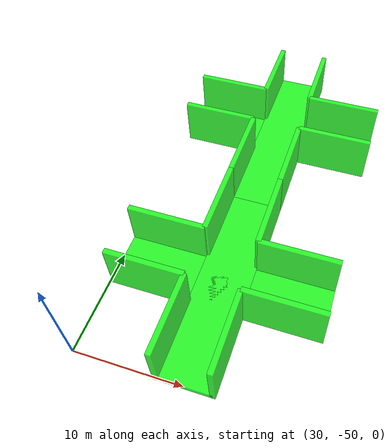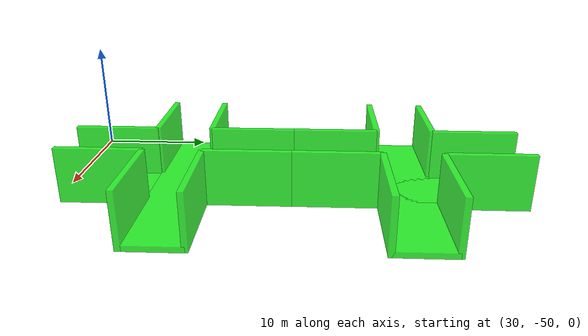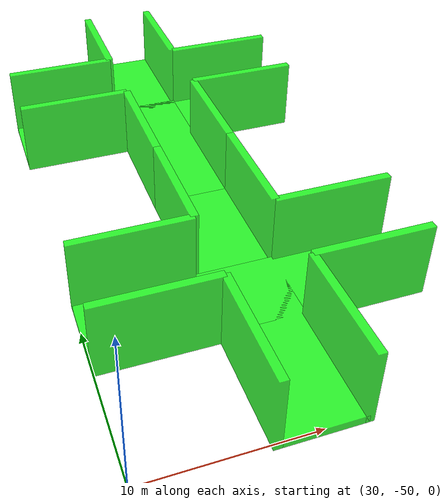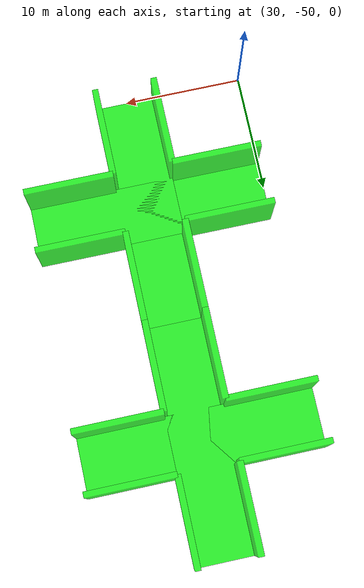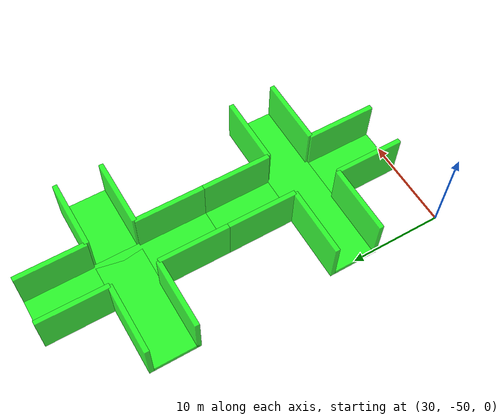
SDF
<sdf version="1.6">
 <world name="default">
  <model name="tile_6">
   <pose>40 -40 0 0 0 -1.5707963267948966</pose>
   <static>true</static>
   <link name="link">
    <collision name="collision_0">
     <pose>0 0 -0.25 0 0 0</pose>
     <geometry><box><size>5 20 0.5</size></box></geometry>
    </collision>
    <visual name="visual_0">
     <pose>0 0 -0.25 0 0 0</pose>
     <geometry><box><size>5 20 0.5</size></box></geometry>
     <material><ambient>0 1 0 0.8</ambient><diffuse>0 1 0 0.8</diffuse><specular>1 1 1 0.8</specular></material>
    </visual>
    <collision name="collision_1">
     <pose>0 0 -0.25 0 0 1.57</pose>
     <geometry><box><size>5 20 0.5</size></box></geometry>
    </collision>
    <visual name="visual_1">
     <pose>0 0 -0.25 0 0 1.57</pose>
     <geometry><box><size>5 20 0.5</size></box></geometry>
     <material><ambient>0 1 0 0.8</ambient><diffuse>0 1 0 0.8</diffuse><specular>1 1 1 0.8</specular></material>
    </visual>
    <collision name="collision_2">
     <pose>-2.5 6.25 2 3.14 -1.57 0</pose>
     <geometry><box><size>5 7.5 0.5</size></box></geometry>
    </collision>
    <visual name="visual_2">
     <pose>-2.5 6.25 2 3.14 -1.57 0</pose>
     <geometry><box><size>5 7.5 0.5</size></box></geometry>
     <material><ambient>0 1 0 0.8</ambient><diffuse>0 1 0 0.8</diffuse><specular>1 1 1 0.8</specular></material>
    </visual>
    <collision name="collision_3">
     <pose>2.5 6.25 2 3.14 -1.57 0</pose>
     <geometry><box><size>5 7.5 0.5</size></box></geometry>
    </collision>
    <visual name="visual_3">
     <pose>2.5 6.25 2 3.14 -1.57 0</pose>
     <geometry><box><size>5 7.5 0.5</size></box></geometry>
     <material><ambient>0 1 0 0.8</ambient><diffuse>0 1 0 0.8</diffuse><specular>1 1 1 0.8</specular></material>
    </visual>
    <collision name="collision_4">
     <pose>-2.5 -6.25 2 3.14 -1.57 0</pose>
     <geometry><box><size>5 7.5 0.5</size></box></geometry>
    </collision>
    <visual name="visual_4">
     <pose>-2.5 -6.25 2 3.14 -1.57 0</pose>
     <geometry><box><size>5 7.5 0.5</size></box></geometry>
     <material><ambient>0 1 0 0.8</ambient><diffuse>0 1 0 0.8</diffuse><specular>1 1 1 0.8</specular></material>
    </visual>
    <collision name="collision_5">
     <pose>2.5 -6.25 2 3.14 -1.57 0</pose>
     <geometry><box><size>5 7.5 0.5</size></box></geometry>
    </collision>
    <visual name="visual_5">
     <pose>2.5 -6.25 2 3.14 -1.57 0</pose>
     <geometry><box><size>5 7.5 0.5</size></box></geometry>
     <material><ambient>0 1 0 0.8</ambient><diffuse>0 1 0 0.8</diffuse><specular>1 1 1 0.8</specular></material>
    </visual>
    <collision name="collision_6">
     <pose>6.25 2.5 2 1.57 1.57 0</pose>
     <geometry><box><size>5 7.5 0.5</size></box></geometry>
    </collision>
    <visual name="visual_6">
     <pose>6.25 2.5 2 1.57 1.57 0</pose>
     <geometry><box><size>5 7.5 0.5</size></box></geometry>
     <material><ambient>0 1 0 0.8</ambient><diffuse>0 1 0 0.8</diffuse><specular>1 1 1 0.8</specular></material>
    </visual>
    <collision name="collision_7">
     <pose>-6.25 2.5 2 1.57 1.57 0</pose>
     <geometry><box><size>5 7.5 0.5</size></box></geometry>
    </collision>
    <visual name="visual_7">
     <pose>-6.25 2.5 2 1.57 1.57 0</pose>
     <geometry><box><size>5 7.5 0.5</size></box></geometry>
     <material><ambient>0 1 0 0.8</ambient><diffuse>0 1 0 0.8</diffuse><specular>1 1 1 0.8</specular></material>
    </visual>
    <collision name="collision_8">
     <pose>6.25 -2.5 2 1.57 1.57 0</pose>
     <geometry><box><size>5 7.5 0.5</size></box></geometry>
    </collision>
    <visual name="visual_8">
     <pose>6.25 -2.5 2 1.57 1.57 0</pose>
     <geometry><box><size>5 7.5 0.5</size></box></geometry>
     <material><ambient>0 1 0 0.8</ambient><diffuse>0 1 0 0.8</diffuse><specular>1 1 1 0.8</specular></material>
    </visual>
    <collision name="collision_9">
     <pose>-6.25 -2.5 2 1.57 1.57 0</pose>
     <geometry><box><size>5 7.5 0.5</size></box></geometry>
    </collision>
    <visual name="visual_9">
     <pose>-6.25 -2.5 2 1.57 1.57 0</pose>
     <geometry><box><size>5 7.5 0.5</size></box></geometry>
     <material><ambient>0 1 0 0.8</ambient><diffuse>0 1 0 0.8</diffuse><specular>1 1 1 0.8</specular></material>
    </visual>
   </link>
  </model>
  <model name="tile_7">
   <pose>40 -20 0 0 0 3.141592653589793</pose>
   <static>true</static>
   <link name="link">
    <collision name="collision_0">
     <pose>0 0 -0.25 0 0 0</pose>
     <geometry><box><size>5 20 0.5</size></box></geometry>
    </collision>
    <visual name="visual_0">
     <pose>0 0 -0.25 0 0 0</pose>
     <geometry><box><size>5 20 0.5</size></box></geometry>
     <material><ambient>0 1 0 0.8</ambient><diffuse>0 1 0 0.8</diffuse><specular>1 1 1 0.8</specular></material>
    </visual>
    <collision name="collision_1">
     <pose>0 0 -0.25 0 0 1.57</pose>
     <geometry><box><size>5 20 0.5</size></box></geometry>
    </collision>
    <visual name="visual_1">
     <pose>0 0 -0.25 0 0 1.57</pose>
     <geometry><box><size>5 20 0.5</size></box></geometry>
     <material><ambient>0 1 0 0.8</ambient><diffuse>0 1 0 0.8</diffuse><specular>1 1 1 0.8</specular></material>
    </visual>
    <collision name="collision_2">
     <pose>-2.5 6.25 2 3.14 -1.57 0</pose>
     <geometry><box><size>5 7.5 0.5</size></box></geometry>
    </collision>
    <visual name="visual_2">
     <pose>-2.5 6.25 2 3.14 -1.57 0</pose>
     <geometry><box><size>5 7.5 0.5</size></box></geometry>
     <material><ambient>0 1 0 0.8</ambient><diffuse>0 1 0 0.8</diffuse><specular>1 1 1 0.8</specular></material>
    </visual>
    <collision name="collision_3">
     <pose>2.5 6.25 2 3.14 -1.57 0</pose>
     <geometry><box><size>5 7.5 0.5</size></box></geometry>
    </collision>
    <visual name="visual_3">
     <pose>2.5 6.25 2 3.14 -1.57 0</pose>
     <geometry><box><size>5 7.5 0.5</size></box></geometry>
     <material><ambient>0 1 0 0.8</ambient><diffuse>0 1 0 0.8</diffuse><specular>1 1 1 0.8</specular></material>
    </visual>
    <collision name="collision_4">
     <pose>-2.5 -6.25 2 3.14 -1.57 0</pose>
     <geometry><box><size>5 7.5 0.5</size></box></geometry>
    </collision>
    <visual name="visual_4">
     <pose>-2.5 -6.25 2 3.14 -1.57 0</pose>
     <geometry><box><size>5 7.5 0.5</size></box></geometry>
     <material><ambient>0 1 0 0.8</ambient><diffuse>0 1 0 0.8</diffuse><specular>1 1 1 0.8</specular></material>
    </visual>
    <collision name="collision_5">
     <pose>2.5 -6.25 2 3.14 -1.57 0</pose>
     <geometry><box><size>5 7.5 0.5</size></box></geometry>
    </collision>
    <visual name="visual_5">
     <pose>2.5 -6.25 2 3.14 -1.57 0</pose>
     <geometry><box><size>5 7.5 0.5</size></box></geometry>
     <material><ambient>0 1 0 0.8</ambient><diffuse>0 1 0 0.8</diffuse><specular>1 1 1 0.8</specular></material>
    </visual>
    <collision name="collision_6">
     <pose>6.25 2.5 2 1.57 1.57 0</pose>
     <geometry><box><size>5 7.5 0.5</size></box></geometry>
    </collision>
    <visual name="visual_6">
     <pose>6.25 2.5 2 1.57 1.57 0</pose>
     <geometry><box><size>5 7.5 0.5</size></box></geometry>
     <material><ambient>0 1 0 0.8</ambient><diffuse>0 1 0 0.8</diffuse><specular>1 1 1 0.8</specular></material>
    </visual>
    <collision name="collision_7">
     <pose>-6.25 2.5 2 1.57 1.57 0</pose>
     <geometry><box><size>5 7.5 0.5</size></box></geometry>
    </collision>
    <visual name="visual_7">
     <pose>-6.25 2.5 2 1.57 1.57 0</pose>
     <geometry><box><size>5 7.5 0.5</size></box></geometry>
     <material><ambient>0 1 0 0.8</ambient><diffuse>0 1 0 0.8</diffuse><specular>1 1 1 0.8</specular></material>
    </visual>
    <collision name="collision_8">
     <pose>6.25 -2.5 2 1.57 1.57 0</pose>
     <geometry><box><size>5 7.5 0.5</size></box></geometry>
    </collision>
    <visual name="visual_8">
     <pose>6.25 -2.5 2 1.57 1.57 0</pose>
     <geometry><box><size>5 7.5 0.5</size></box></geometry>
     <material><ambient>0 1 0 0.8</ambient><diffuse>0 1 0 0.8</diffuse><specular>1 1 1 0.8</specular></material>
    </visual>
    <collision name="collision_9">
     <pose>-6.25 -2.5 2 1.57 1.57 0</pose>
     <geometry><box><size>5 7.5 0.5</size></box></geometry>
    </collision>
    <visual name="visual_9">
     <pose>-6.25 -2.5 2 1.57 1.57 0</pose>
     <geometry><box><size>5 7.5 0.5</size></box></geometry>
     <material><ambient>0 1 0 0.8</ambient><diffuse>0 1 0 0.8</diffuse><specular>1 1 1 0.8</specular></material>
    </visual>
   </link>
  </model>
 </world>
</sdf>
